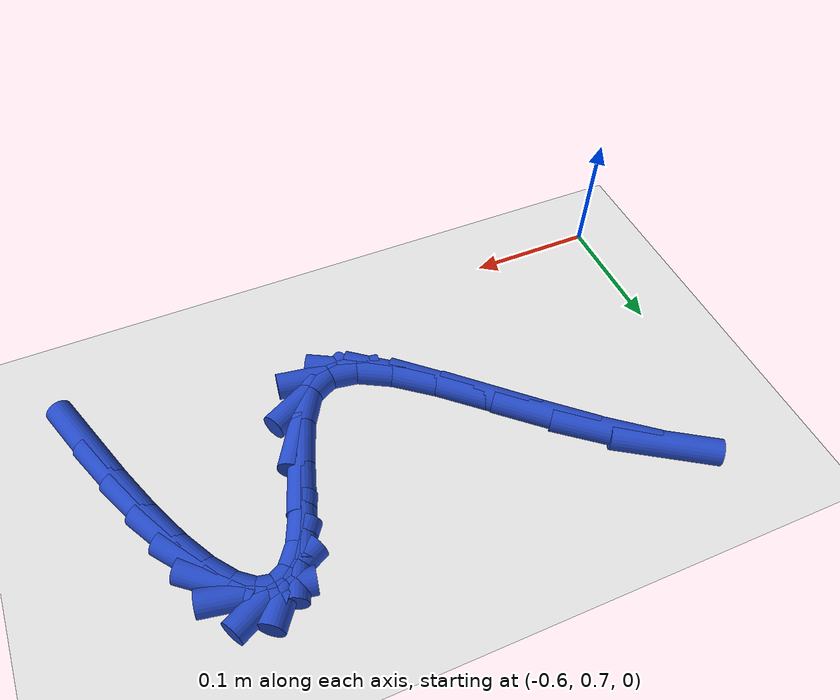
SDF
<sdf version="1.6">
 <world name="default">
  <model name="ground_plane">
   <static>1</static>
   <link name="link">
    <collision name="collision">
     <geometry><plane><normal>0 0 1</normal><size>100 100</size></plane></geometry>
     <surface><friction><ode><mu>100</mu><mu2>50</mu2></ode></friction></surface>
    </collision>
    <visual name="visual">
     <cast_shadows>0</cast_shadows>
     <geometry><plane><normal>0 0 1</normal><size>100 100</size></plane></geometry>
     <material>
      <script><uri>file://media/materials/scripts/gazebo.material</uri><name>Gazebo/WhiteGlow</name></script>
     </material>
    </visual>
   </link>
  </model>
  <model name="line">
   <link name="link_18">
    <pose>-0.15011004961034738 0.7553967875088409 0.01 0 1.57 -1.2425707087678826</pose>
    <collision name="collision">
     <geometry><cylinder><radius>0.01</radius><length>0.08</length></cylinder></geometry>
    </collision>
    <visual name="visual">
     <material>
      <script><name>Gazebo/Blue</name><uri>file://media/materials/scripts/gazebo.material</uri></script>
     </material>
     <geometry><cylinder><radius>0.01</radius><length>0.08</length></cylinder></geometry>
    </visual>
   </link>
   <link name="link_19">
    <pose>-0.16358307580364123 0.7949600907099548 0.01 0 1.57 -1.2032756551532462</pose>
    <collision name="collision">
     <geometry><cylinder><radius>0.01</radius><length>0.08</length></cylinder></geometry>
    </collision>
    <visual name="visual">
     <material>
      <script><name>Gazebo/Blue</name><uri>file://media/materials/scripts/gazebo.material</uri></script>
     </material>
     <geometry><cylinder><radius>0.01</radius><length>0.08</length></cylinder></geometry>
    </visual>
   </link>
   <link name="link_20">
    <pose>-0.1771088715290347 0.8300907882348404 0.01 0 1.57 -1.1477923631294051</pose>
    <collision name="collision">
     <geometry><cylinder><radius>0.01</radius><length>0.08</length></cylinder></geometry>
    </collision>
    <visual name="visual">
     <material>
      <script><name>Gazebo/Blue</name><uri>file://media/materials/scripts/gazebo.material</uri></script>
     </material>
     <geometry><cylinder><radius>0.01</radius><length>0.08</length></cylinder></geometry>
    </visual>
   </link>
   <link name="link_21">
    <pose>-0.1906112259160003 0.8600839941089542 0.01 0 1.57 -1.0641543445120567</pose>
    <collision name="collision">
     <geometry><cylinder><radius>0.01</radius><length>0.08</length></cylinder></geometry>
    </collision>
    <visual name="visual">
     <material>
      <script><name>Gazebo/Blue</name><uri>file://media/materials/scripts/gazebo.material</uri></script>
     </material>
     <geometry><cylinder><radius>0.01</radius><length>0.08</length></cylinder></geometry>
    </visual>
   </link>
   <link name="link_22">
    <pose>-0.2040139280940103 0.8842348223577521 0.01 0 1.57 -0.9264172251843087</pose>
    <collision name="collision">
     <geometry><cylinder><radius>0.01</radius><length>0.08</length></cylinder></geometry>
    </collision>
    <visual name="visual">
     <material>
      <script><name>Gazebo/Blue</name><uri>file://media/materials/scripts/gazebo.material</uri></script>
     </material>
     <geometry><cylinder><radius>0.01</radius><length>0.08</length></cylinder></geometry>
    </visual>
   </link>
   <link name="link_23">
    <pose>-0.21724076719253713 0.9018383870066901 0.01 0 1.57 -0.6734049822729485</pose>
    <collision name="collision">
     <geometry><cylinder><radius>0.01</radius><length>0.08</length></cylinder></geometry>
    </collision>
    <visual name="visual">
     <material>
      <script><name>Gazebo/Blue</name><uri>file://media/materials/scripts/gazebo.material</uri></script>
     </material>
     <geometry><cylinder><radius>0.01</radius><length>0.08</length></cylinder></geometry>
    </visual>
   </link>
   <link name="link_24">
    <pose>-0.23021553234105324 0.9121898020812245 0.01 0 1.57 -0.18711684541497944</pose>
    <collision name="collision">
     <geometry><cylinder><radius>0.01</radius><length>0.08</length></cylinder></geometry>
    </collision>
    <visual name="visual">
     <material>
      <script><name>Gazebo/Blue</name><uri>file://media/materials/scripts/gazebo.material</uri></script>
     </material>
     <geometry><cylinder><radius>0.01</radius><length>0.08</length></cylinder></geometry>
    </visual>
   </link>
   <link name="link_25">
    <pose>-0.2428620126690309 0.9145841816068108 0.01 0 1.57 0.47317853843520746</pose>
    <collision name="collision">
     <geometry><cylinder><radius>0.01</radius><length>0.08</length></cylinder></geometry>
    </collision>
    <visual name="visual">
     <material>
      <script><name>Gazebo/Blue</name><uri>file://media/materials/scripts/gazebo.material</uri></script>
     </material>
     <geometry><cylinder><radius>0.01</radius><length>0.08</length></cylinder></geometry>
    </visual>
   </link>
   <link name="link_26">
    <pose>-0.2551039973059427 0.9083166396089053 0.01 0 1.57 0.92584293908052</pose>
    <collision name="collision">
     <geometry><cylinder><radius>0.01</radius><length>0.08</length></cylinder></geometry>
    </collision>
    <visual name="visual">
     <material>
      <script><name>Gazebo/Blue</name><uri>file://media/materials/scripts/gazebo.material</uri></script>
     </material>
     <geometry><cylinder><radius>0.01</radius><length>0.08</length></cylinder></geometry>
    </visual>
   </link>
   <link name="link_27">
    <pose>-0.26686527538126087 0.8926822901129643 0.01 0 1.57 1.1592164706450918</pose>
    <collision name="collision">
     <geometry><cylinder><radius>0.01</radius><length>0.08</length></cylinder></geometry>
    </collision>
    <visual name="visual">
     <material>
      <script><name>Gazebo/Blue</name><uri>file://media/materials/scripts/gazebo.material</uri></script>
     </material>
     <geometry><cylinder><radius>0.01</radius><length>0.08</length></cylinder></geometry>
    </visual>
   </link>
   <link name="link_28">
    <pose>-0.27807422056377834 0.8670037838245043 0.01 0 1.57 1.2503655635150068</pose>
    <collision name="collision">
     <geometry><cylinder><radius>0.01</radius><length>0.08</length></cylinder></geometry>
    </collision>
    <visual name="visual">
     <material>
      <script><name>Gazebo/Blue</name><uri>file://media/materials/scripts/gazebo.material</uri></script>
     </material>
     <geometry><cylinder><radius>0.01</radius><length>0.08</length></cylinder></geometry>
    </visual>
   </link>
   <link name="link_29">
    <pose>-0.2891586480716466 0.8336036284013868 0.01 0 1.57 1.2146622342306626</pose>
    <collision name="collision">
     <geometry><cylinder><radius>0.01</radius><length>0.08</length></cylinder></geometry>
    </collision>
    <visual name="visual">
     <material>
      <script><name>Gazebo/Blue</name><uri>file://media/materials/scripts/gazebo.material</uri></script>
     </material>
     <geometry><cylinder><radius>0.01</radius><length>0.08</length></cylinder></geometry>
    </visual>
   </link>
   <link name="link_30">
    <pose>-0.30148796301030795 0.800459918172773 0.01 0 1.57 1.0161993722876308</pose>
    <collision name="collision">
     <geometry><cylinder><radius>0.01</radius><length>0.08</length></cylinder></geometry>
    </collision>
    <visual name="visual">
     <material>
      <script><name>Gazebo/Blue</name><uri>file://media/materials/scripts/gazebo.material</uri></script>
     </material>
     <geometry><cylinder><radius>0.01</radius><length>0.08</length></cylinder></geometry>
    </visual>
   </link>
   <link name="link_31">
    <pose>-0.3165345752909794 0.7761695653891478 0.01 0 1.57 0.4786452891999219</pose>
    <collision name="collision">
     <geometry><cylinder><radius>0.01</radius><length>0.08</length></cylinder></geometry>
    </collision>
    <visual name="visual">
     <material>
      <script><name>Gazebo/Blue</name><uri>file://media/materials/scripts/gazebo.material</uri></script>
     </material>
     <geometry><cylinder><radius>0.01</radius><length>0.08</length></cylinder></geometry>
    </visual>
   </link>
   <link name="link_32">
    <pose>-0.3352822161873972 0.7664415987991907 0.01 0 1.57 -0.14962059238042957</pose>
    <collision name="collision">
     <geometry><cylinder><radius>0.01</radius><length>0.08</length></cylinder></geometry>
    </collision>
    <visual name="visual">
     <material>
      <script><name>Gazebo/Blue</name><uri>file://media/materials/scripts/gazebo.material</uri></script>
     </material>
     <geometry><cylinder><radius>0.01</radius><length>0.08</length></cylinder></geometry>
    </visual>
   </link>
   <link name="link_33">
    <pose>-0.3574971679656393 0.769790439829212 0.01 0 1.57 -0.5011459220433687</pose>
    <collision name="collision">
     <geometry><cylinder><radius>0.01</radius><length>0.08</length></cylinder></geometry>
    </collision>
    <visual name="visual">
     <material>
      <script><name>Gazebo/Blue</name><uri>file://media/materials/scripts/gazebo.material</uri></script>
     </material>
     <geometry><cylinder><radius>0.01</radius><length>0.08</length></cylinder></geometry>
    </visual>
   </link>
   <link name="link_34">
    <pose>-0.3827592866161876 0.7836288096790219 0.01 0 1.57 -0.6621384136848523</pose>
    <collision name="collision">
     <geometry><cylinder><radius>0.01</radius><length>0.08</length></cylinder></geometry>
    </collision>
    <visual name="visual">
     <material>
      <script><name>Gazebo/Blue</name><uri>file://media/materials/scripts/gazebo.material</uri></script>
     </material>
     <geometry><cylinder><radius>0.01</radius><length>0.08</length></cylinder></geometry>
    </visual>
   </link>
   <link name="link_35">
    <pose>-0.4106484281295235 0.8053694295484323 0.01 0 1.57 -0.7322489039355877</pose>
    <collision name="collision">
     <geometry><cylinder><radius>0.01</radius><length>0.08</length></cylinder></geometry>
    </collision>
    <visual name="visual">
     <material>
      <script><name>Gazebo/Blue</name><uri>file://media/materials/scripts/gazebo.material</uri></script>
     </material>
     <geometry><cylinder><radius>0.01</radius><length>0.08</length></cylinder></geometry>
    </visual>
   </link>
   <link name="link_36">
    <pose>-0.4407444484961283 0.8324250206372528 0.01 0 1.57 -0.7513654748937402</pose>
    <collision name="collision">
     <geometry><cylinder><radius>0.01</radius><length>0.08</length></cylinder></geometry>
    </collision>
    <visual name="visual">
     <material>
      <script><name>Gazebo/Blue</name><uri>file://media/materials/scripts/gazebo.material</uri></script>
     </material>
     <geometry><cylinder><radius>0.01</radius><length>0.08</length></cylinder></geometry>
    </visual>
   </link>
   <link name="link_37">
    <pose>-0.472627203706484 0.8622083041452955 0.01 0 1.57 -0.7328032323105936</pose>
    <collision name="collision">
     <geometry><cylinder><radius>0.01</radius><length>0.08</length></cylinder></geometry>
    </collision>
    <visual name="visual">
     <material>
      <script><name>Gazebo/Blue</name><uri>file://media/materials/scripts/gazebo.material</uri></script>
     </material>
     <geometry><cylinder><radius>0.01</radius><length>0.08</length></cylinder></geometry>
    </visual>
   </link>
   <link name="link_38">
    <pose>-0.5058765497510723 0.8921320012723709 0.01 0 1.57 -0.6768805529917868</pose>
    <collision name="collision">
     <geometry><cylinder><radius>0.01</radius><length>0.08</length></cylinder></geometry>
    </collision>
    <visual name="visual">
     <material>
      <script><name>Gazebo/Blue</name><uri>file://media/materials/scripts/gazebo.material</uri></script>
     </material>
     <geometry><cylinder><radius>0.01</radius><length>0.08</length></cylinder></geometry>
    </visual>
   </link>
   <link name="link_39">
    <pose>-0.5400723426203746 0.91960883321829 0.01 0 1.57 -0.5746531600312526</pose>
    <collision name="collision">
     <geometry><cylinder><radius>0.01</radius><length>0.08</length></cylinder></geometry>
    </collision>
    <visual name="visual">
     <material>
      <script><name>Gazebo/Blue</name><uri>file://media/materials/scripts/gazebo.material</uri></script>
     </material>
     <geometry><cylinder><radius>0.01</radius><length>0.08</length></cylinder></geometry>
    </visual>
   </link>
  </model>
 </world>
</sdf>
